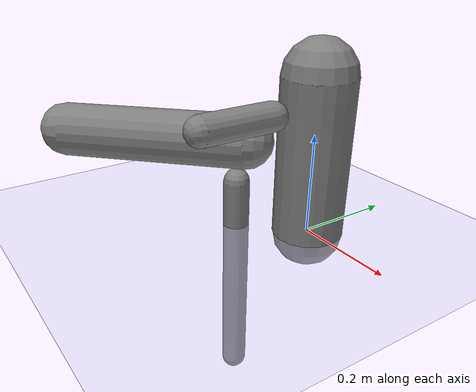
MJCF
<?xml version='1.0' encoding='UTF-8'?>
<mujoco model="robot_model">
  <worldbody>
    <light name="light" pos="0 -3 10" dir="0 0.5 -1" diffuse=".8 .8 .8" specular="0.1 0.1 0.1"/>
    <geom name="floor" type="plane" size="10.0 10.0 0.1" pos="0 0 0" rgba="0.8 0.8 1 1" contype="2" conaffinity="1"/>
    <body name="limb0" pos="0 0 0">
      <geom name="limb0_geom" type="capsule" fromto="0 0 0 0 0 0.31058036036701475" size="0.0707093255790541" density="569.0919866704597" contype="1" conaffinity="2"/>
      <site type="sphere" size="0.01" name="limb0_site0" pos="-0.09084466994718449 -0.09084466994718446 0.17880797456206457" quat="0.7071067811865476 0.4999999999999999 -0.5000000000000001 0.0"/>
      <site type="sphere" size="0.01" name="limb0_site1" pos="-1.8805595437694594e-17 -0.10237289342411643 0.25395559459885564" quat="0.7071067811865476 0.7071067811865475 -1.2989340843532398e-16 0.0"/>
      <freejoint name="limb0_root"/>
      <body name="limb1" pos="-0.09084466994718449 -0.09084466994718446 0.17880797456206457" quat="0.7071067811865476 0.4999999999999999 -0.5000000000000001 0.0">
        <geom name="limb1_geom" type="capsule" fromto="0 0 0 0 0 0.3711195112383836" size="0.053764438729561694" density="695.0572133567601" contype="1" conaffinity="2"/>
        <site type="sphere" size="0.01" name="limb1_site0" pos="-0.05964851918874987 -0.059648519188749846 0.017912304026733158" quat="0.7071067811865476 0.4999999999999999 -0.5000000000000001 0.0"/>
        <body name="limb2" pos="-0.05964851918874987 -0.059648519188749846 0.017912304026733158" quat="0.7071067811865476 0.4999999999999999 -0.5000000000000001 0.0">
          <geom name="limb2_geom" type="capsule" fromto="0 0 0 0 0 0.45077315733160433" size="0.02659130608264014" density="1115.7827975094947" contype="1" conaffinity="2"/>
          <joint name="joint_limb1_limb2_0" type="hinge" axis="1 0 0" range="-100.6413577042811 100.6413577042811" damping="5.0"/>
        </body>
        <joint name="joint_limb0_limb1_0" type="hinge" axis="0 1 0" range="-113.6566083474294 113.6566083474294" damping="5.0"/>
      </body>
      <body name="limb3" pos="-1.8805595437694594e-17 -0.10237289342411643 0.25395559459885564" quat="0.7071067811865476 0.7071067811865475 -1.2989340843532398e-16 0.0">
        <geom name="limb3_geom" type="capsule" fromto="0 0 0 0 0 0.14705663010487965" size="0.02766356784506233" density="804.7781072521468" contype="1" conaffinity="2"/>
        <joint name="joint_limb0_limb3_0" type="hinge" axis="0 0 1" range="-27.51326948727836 27.51326948727836" damping="5.0"/>
      </body>
    </body>
  </worldbody>
  <actuator>
    <position name="position_actuator_joint_limb0_limb1_0" joint="joint_limb0_limb1_0" gear="1.081511317933534" inheritrange="1" forcerange="-20.000595824005522 20.000595824005522" forcelimited="true" kp="100.0"/>
    <position name="position_actuator_joint_limb1_limb2_0" joint="joint_limb1_limb2_0" gear="1.524999731128868" inheritrange="1" forcerange="-6.0258601534112195 6.0258601534112195" forcelimited="true" kp="100.0"/>
    <position name="position_actuator_joint_limb0_limb3_0" joint="joint_limb0_limb3_0" gear="1.326567493689957" inheritrange="1" forcerange="-1.7794749187366463 1.7794749187366463" forcelimited="true" kp="100.0"/>
  </actuator>
  <contact>
    <pair geom1="limb0_geom" geom2="limb1_geom"/>
    <pair geom1="limb1_geom" geom2="limb2_geom"/>
    <pair geom1="limb0_geom" geom2="limb3_geom"/>
  </contact>
</mujoco>
